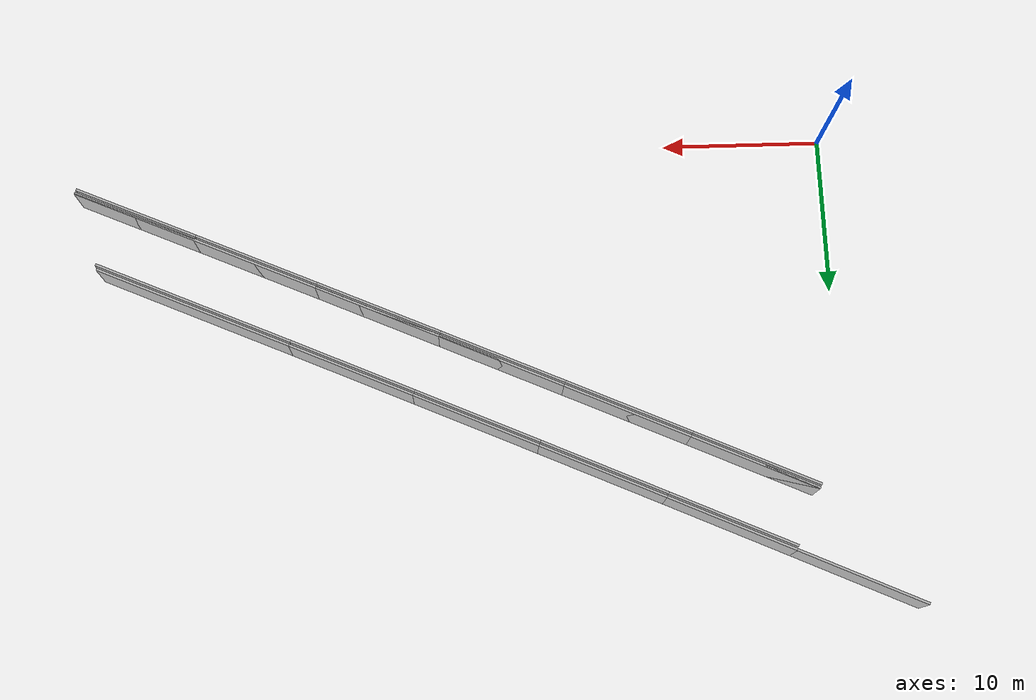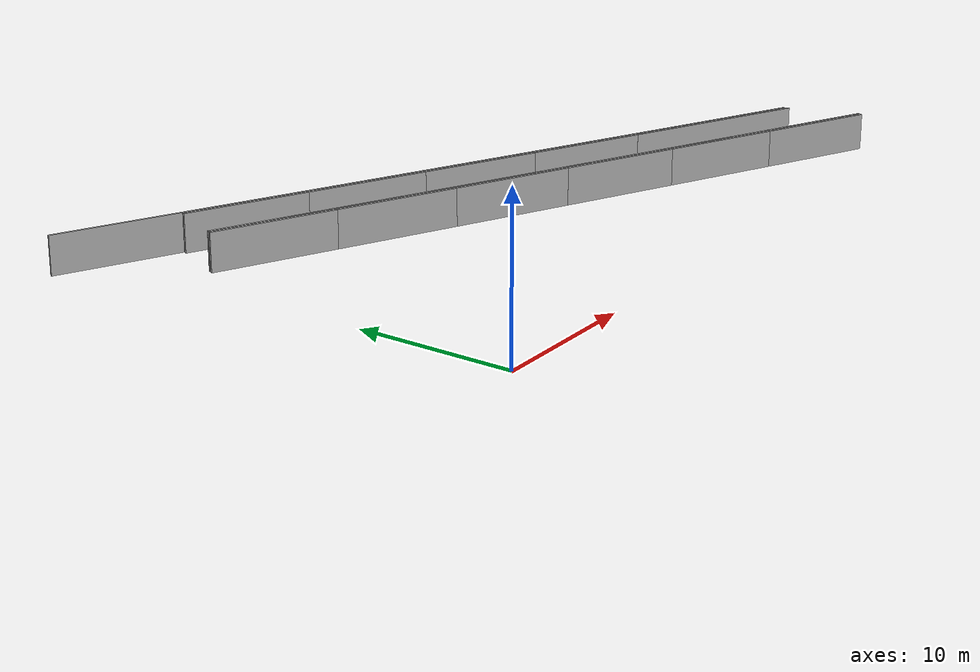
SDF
<?xml version="1.0" ?>
<sdf version="1.6">
  <model name="sps_0410">
    <pose frame="">0 0 0 0 -0 0</pose>
    <static>1</static>
    <self_collide>0</self_collide>
    <allow_auto_disable>0</allow_auto_disable>
    <link name="Wall4312">
      <kinematic>0</kinematic>
      <gravity>1</gravity>
      <self_collide>0</self_collide>
      <collision name="collision">
        <geometry>
          <box>
            <size>8.2515 0.15 2.5</size>
          </box>
        </geometry>
        <pose frame="">0 0 0 0 -0 0</pose>
      </collision>
      <visual name="visual">
        <geometry>
          <box>
            <size>8.2515 0.15 2.5</size>
          </box>
        </geometry>
        <pose frame="">0 0 0 0 -0 0</pose>
        <cast_shadows>1</cast_shadows>
        <transparency>0.0</transparency>
      </visual>
      <pose frame="">7.46117 24.6751 1.25 0 0 -0.420396</pose>
    </link>
    <link name="Wall4313">
      <kinematic>0</kinematic>
      <gravity>1</gravity>
      <self_collide>0</self_collide>
      <collision name="collision">
        <geometry>
          <box>
            <size>8.25149 0.15 2.5</size>
          </box>
        </geometry>
        <pose frame="">0 0 0 0 -0 0</pose>
      </collision>
      <visual name="visual">
        <geometry>
          <box>
            <size>8.25149 0.15 2.5</size>
          </box>
        </geometry>
        <pose frame="">0 0 0 0 -0 0</pose>
        <cast_shadows>1</cast_shadows>
        <transparency>0.0</transparency>
      </visual>
      <pose frame="">14.9982 21.3164 1.25 0 0 -0.418031</pose>
    </link>
    <link name="Wall4314">
      <kinematic>0</kinematic>
      <gravity>1</gravity>
      <self_collide>0</self_collide>
      <collision name="collision">
        <geometry>
          <box>
            <size>8.25167 0.15 2.5</size>
          </box>
        </geometry>
        <pose frame="">0 0 0 0 -0 0</pose>
      </collision>
      <visual name="visual">
        <geometry>
          <box>
            <size>8.25167 0.15 2.5</size>
          </box>
        </geometry>
        <pose frame="">0 0 0 0 -0 0</pose>
        <cast_shadows>1</cast_shadows>
        <transparency>0.0</transparency>
      </visual>
      <pose frame="">22.5431 17.9755 1.25 0 0 -0.415668</pose>
    </link>
    <link name="Wall4315">
      <kinematic>0</kinematic>
      <gravity>1</gravity>
      <self_collide>0</self_collide>
      <collision name="collision">
        <geometry>
          <box>
            <size>8.25154 0.15 2.5</size>
          </box>
        </geometry>
        <pose frame="">0 0 0 0 -0 0</pose>
      </collision>
      <visual name="visual">
        <geometry>
          <box>
            <size>8.25154 0.15 2.5</size>
          </box>
        </geometry>
        <pose frame="">0 0 0 0 -0 0</pose>
        <cast_shadows>1</cast_shadows>
        <transparency>0.0</transparency>
      </visual>
      <pose frame="">30.0961 14.6525 1.25 0 0 -0.413283</pose>
    </link>
    <link name="Wall4316">
      <kinematic>0</kinematic>
      <gravity>1</gravity>
      <self_collide>0</self_collide>
      <collision name="collision">
        <geometry>
          <box>
            <size>13.2303 0.15 2.5</size>
          </box>
        </geometry>
        <pose frame="">0 0 0 0 -0 0</pose>
      </collision>
      <visual name="visual">
        <geometry>
          <box>
            <size>13.2303 0.15 2.5</size>
          </box>
        </geometry>
        <pose frame="">0 0 0 0 -0 0</pose>
        <cast_shadows>1</cast_shadows>
        <transparency>0.0</transparency>
      </visual>
      <pose frame="">39.9425 10.3612 1.25 0 0 -0.40958</pose>
    </link>
    <link name="Wall4325">
      <kinematic>0</kinematic>
      <gravity>1</gravity>
      <self_collide>0</self_collide>
      <collision name="collision">
        <geometry>
          <box>
            <size>8.26109 0.15 2.5</size>
          </box>
        </geometry>
        <pose frame="">0 0 0 0 -0 0</pose>
      </collision>
      <visual name="visual">
        <geometry>
          <box>
            <size>8.26109 0.15 2.5</size>
          </box>
        </geometry>
        <pose frame="">0 0 0 0 -0 0</pose>
        <cast_shadows>1</cast_shadows>
        <transparency>0.0</transparency>
      </visual>
      <pose frame="">43.7029 4.62248 1.25 0 -0 2.73298</pose>
    </link>
    <link name="Wall4326">
      <kinematic>0</kinematic>
      <gravity>1</gravity>
      <self_collide>0</self_collide>
      <collision name="collision">
        <geometry>
          <box>
            <size>8.26093 0.15 2.5</size>
          </box>
        </geometry>
        <pose frame="">0 0 0 0 -0 0</pose>
      </collision>
      <visual name="visual">
        <geometry>
          <box>
            <size>8.26093 0.15 2.5</size>
          </box>
        </geometry>
        <pose frame="">0 0 0 0 -0 0</pose>
        <cast_shadows>1</cast_shadows>
        <transparency>0.0</transparency>
      </visual>
      <pose frame="">36.1258 7.91368 1.25 0 -0 2.73065</pose>
    </link>
    <link name="Wall4327">
      <kinematic>0</kinematic>
      <gravity>1</gravity>
      <self_collide>0</self_collide>
      <collision name="collision">
        <geometry>
          <box>
            <size>8.26082 0.15 2.5</size>
          </box>
        </geometry>
        <pose frame="">0 0 0 0 -0 0</pose>
      </collision>
      <visual name="visual">
        <geometry>
          <box>
            <size>8.26082 0.15 2.5</size>
          </box>
        </geometry>
        <pose frame="">0 0 0 0 -0 0</pose>
        <cast_shadows>1</cast_shadows>
        <transparency>0.0</transparency>
      </visual>
      <pose frame="">28.5567 11.2227 1.25 0 -0 2.72827</pose>
    </link>
    <link name="Wall4328">
      <kinematic>0</kinematic>
      <gravity>1</gravity>
      <self_collide>0</self_collide>
      <collision name="collision">
        <geometry>
          <box>
            <size>8.26114 0.15 2.5</size>
          </box>
        </geometry>
        <pose frame="">0 0 0 0 -0 0</pose>
      </collision>
      <visual name="visual">
        <geometry>
          <box>
            <size>8.26114 0.15 2.5</size>
          </box>
        </geometry>
        <pose frame="">0 0 0 0 -0 0</pose>
        <cast_shadows>1</cast_shadows>
        <transparency>0.0</transparency>
      </visual>
      <pose frame="">20.9953 14.5497 1.25 0 -0 2.72591</pose>
    </link>
    <link name="Wall4329">
      <kinematic>0</kinematic>
      <gravity>1</gravity>
      <self_collide>0</self_collide>
      <collision name="collision">
        <geometry>
          <box>
            <size>8.26105 0.15 2.5</size>
          </box>
        </geometry>
        <pose frame="">0 0 0 0 -0 0</pose>
      </collision>
      <visual name="visual">
        <geometry>
          <box>
            <size>8.26105 0.15 2.5</size>
          </box>
        </geometry>
        <pose frame="">0 0 0 0 -0 0</pose>
        <cast_shadows>1</cast_shadows>
        <transparency>0.0</transparency>
      </visual>
      <pose frame="">13.4416 17.8946 1.25 0 -0 2.72354</pose>
    </link>
    <link name="Wall4330">
      <kinematic>0</kinematic>
      <gravity>1</gravity>
      <self_collide>0</self_collide>
      <collision name="collision">
        <geometry>
          <box>
            <size>8.26084 0.15 2.5</size>
          </box>
        </geometry>
        <pose frame="">0 0 0 0 -0 0</pose>
      </collision>
      <visual name="visual">
        <geometry>
          <box>
            <size>8.26084 0.15 2.5</size>
          </box>
        </geometry>
        <pose frame="">0 0 0 0 -0 0</pose>
        <cast_shadows>1</cast_shadows>
        <transparency>0.0</transparency>
      </visual>
      <pose frame="">5.89605 21.2572 1.25 0 -0 2.7212</pose>
    </link>
    <link name="Wall18058">
      <kinematic>0</kinematic>
      <gravity>1</gravity>
      <self_collide>0</self_collide>
      <collision name="collision">
        <geometry>
          <box>
            <size>8.25101 0.15 2.5</size>
          </box>
        </geometry>
        <pose frame="">0 0 0 0 -0 0</pose>
      </collision>
      <visual name="visual">
        <geometry>
          <box>
            <size>8.25101 0.15 2.5</size>
          </box>
        </geometry>
        <pose frame="">0 0 0 0 -0 0</pose>
        <cast_shadows>1</cast_shadows>
        <transparency>0.0</transparency>
      </visual>
      <pose frame="">0.0367349 28.2787 1.25 0 0 -0.422757</pose>
    </link>
    <link name="Wall18059">
      <kinematic>0</kinematic>
      <gravity>1</gravity>
      <self_collide>0</self_collide>
      <collision name="collision">
        <geometry>
          <box>
            <size>8.25077 0.15 2.5</size>
          </box>
        </geometry>
        <pose frame="">0 0 0 0 -0 0</pose>
      </collision>
      <visual name="visual">
        <geometry>
          <box>
            <size>8.25077 0.15 2.5</size>
          </box>
        </geometry>
        <pose frame="">0 0 0 0 -0 0</pose>
        <cast_shadows>1</cast_shadows>
        <transparency>0.0</transparency>
      </visual>
      <pose frame="">7.56524 24.9025 1.25 0 0 -0.420378</pose>
    </link>
    <link name="Wall18060">
      <kinematic>0</kinematic>
      <gravity>1</gravity>
      <self_collide>0</self_collide>
      <collision name="collision">
        <geometry>
          <box>
            <size>8.25108 0.15 2.5</size>
          </box>
        </geometry>
        <pose frame="">0 0 0 0 -0 0</pose>
      </collision>
      <visual name="visual">
        <geometry>
          <box>
            <size>8.25108 0.15 2.5</size>
          </box>
        </geometry>
        <pose frame="">0 0 0 0 -0 0</pose>
        <cast_shadows>1</cast_shadows>
        <transparency>0.0</transparency>
      </visual>
      <pose frame="">15.1017 21.5441 1.25 0 0 -0.418029</pose>
    </link>
    <link name="Wall18061">
      <kinematic>0</kinematic>
      <gravity>1</gravity>
      <self_collide>0</self_collide>
      <collision name="collision">
        <geometry>
          <box>
            <size>8.25084 0.15 2.5</size>
          </box>
        </geometry>
        <pose frame="">0 0 0 0 -0 0</pose>
      </collision>
      <visual name="visual">
        <geometry>
          <box>
            <size>8.25084 0.15 2.5</size>
          </box>
        </geometry>
        <pose frame="">0 0 0 0 -0 0</pose>
        <cast_shadows>1</cast_shadows>
        <transparency>0.0</transparency>
      </visual>
      <pose frame="">22.6461 18.2034 1.25 0 0 -0.41568</pose>
    </link>
    <link name="Wall18062">
      <kinematic>0</kinematic>
      <gravity>1</gravity>
      <self_collide>0</self_collide>
      <collision name="collision">
        <geometry>
          <box>
            <size>8.25101 0.15 2.5</size>
          </box>
        </geometry>
        <pose frame="">0 0 0 0 -0 0</pose>
      </collision>
      <visual name="visual">
        <geometry>
          <box>
            <size>8.25101 0.15 2.5</size>
          </box>
        </geometry>
        <pose frame="">0 0 0 0 -0 0</pose>
        <cast_shadows>1</cast_shadows>
        <transparency>0.0</transparency>
      </visual>
      <pose frame="">30.1984 14.8805 1.25 0 0 -0.413319</pose>
    </link>
    <link name="Wall18063">
      <kinematic>0</kinematic>
      <gravity>1</gravity>
      <self_collide>0</self_collide>
      <collision name="collision">
        <geometry>
          <box>
            <size>13.0272 0.15 2.5</size>
          </box>
        </geometry>
        <pose frame="">0 0 0 0 -0 0</pose>
      </collision>
      <visual name="visual">
        <geometry>
          <box>
            <size>13.0272 0.15 2.5</size>
          </box>
        </geometry>
        <pose frame="">0 0 0 0 -0 0</pose>
        <cast_shadows>1</cast_shadows>
        <transparency>0.0</transparency>
      </visual>
      <pose frame="">39.9512 10.6293 1.25 0 0 -0.409632</pose>
    </link>
    <link name="Wall37647">
      <kinematic>0</kinematic>
      <gravity>1</gravity>
      <self_collide>0</self_collide>
      <collision name="collision">
        <geometry>
          <box>
            <size>8.2515 0.15 2.5</size>
          </box>
        </geometry>
        <pose frame="">0 0 0 0 -0 0</pose>
      </collision>
      <visual name="visual">
        <geometry>
          <box>
            <size>8.2515 0.15 2.5</size>
          </box>
        </geometry>
        <pose frame="">0 0 0 0 -0 0</pose>
        <cast_shadows>1</cast_shadows>
        <transparency>0.0</transparency>
      </visual>
      <pose frame="">7.46117 24.6751 1.25 0 0 -0.420396</pose>
    </link>
    <link name="Wall37648">
      <kinematic>0</kinematic>
      <gravity>1</gravity>
      <self_collide>0</self_collide>
      <collision name="collision">
        <geometry>
          <box>
            <size>8.25149 0.15 2.5</size>
          </box>
        </geometry>
        <pose frame="">0 0 0 0 -0 0</pose>
      </collision>
      <visual name="visual">
        <geometry>
          <box>
            <size>8.25149 0.15 2.5</size>
          </box>
        </geometry>
        <pose frame="">0 0 0 0 -0 0</pose>
        <cast_shadows>1</cast_shadows>
        <transparency>0.0</transparency>
      </visual>
      <pose frame="">14.9982 21.3164 1.25 0 0 -0.418031</pose>
    </link>
    <link name="Wall37649">
      <kinematic>0</kinematic>
      <gravity>1</gravity>
      <self_collide>0</self_collide>
      <collision name="collision">
        <geometry>
          <box>
            <size>8.25167 0.15 2.5</size>
          </box>
        </geometry>
        <pose frame="">0 0 0 0 -0 0</pose>
      </collision>
      <visual name="visual">
        <geometry>
          <box>
            <size>8.25167 0.15 2.5</size>
          </box>
        </geometry>
        <pose frame="">0 0 0 0 -0 0</pose>
        <cast_shadows>1</cast_shadows>
        <transparency>0.0</transparency>
      </visual>
      <pose frame="">22.5431 17.9755 1.25 0 0 -0.415668</pose>
    </link>
    <link name="Wall37650">
      <kinematic>0</kinematic>
      <gravity>1</gravity>
      <self_collide>0</self_collide>
      <collision name="collision">
        <geometry>
          <box>
            <size>8.25154 0.15 2.5</size>
          </box>
        </geometry>
        <pose frame="">0 0 0 0 -0 0</pose>
      </collision>
      <visual name="visual">
        <geometry>
          <box>
            <size>8.25154 0.15 2.5</size>
          </box>
        </geometry>
        <pose frame="">0 0 0 0 -0 0</pose>
        <cast_shadows>1</cast_shadows>
        <transparency>0.0</transparency>
      </visual>
      <pose frame="">30.0961 14.6525 1.25 0 0 -0.413283</pose>
    </link>
    <link name="Wall37651">
      <kinematic>0</kinematic>
      <gravity>1</gravity>
      <self_collide>0</self_collide>
      <collision name="collision">
        <geometry>
          <box>
            <size>13.2303 0.15 2.5</size>
          </box>
        </geometry>
        <pose frame="">0 0 0 0 -0 0</pose>
      </collision>
      <visual name="visual">
        <geometry>
          <box>
            <size>13.2303 0.15 2.5</size>
          </box>
        </geometry>
        <pose frame="">0 0 0 0 -0 0</pose>
        <cast_shadows>1</cast_shadows>
        <transparency>0.0</transparency>
      </visual>
      <pose frame="">39.9425 10.3612 1.25 0 0 -0.40958</pose>
    </link>
    <link name="Wall37867">
      <kinematic>0</kinematic>
      <gravity>1</gravity>
      <self_collide>0</self_collide>
      <collision name="collision">
        <geometry>
          <box>
            <size>8.26157 0.15 2.5</size>
          </box>
        </geometry>
        <pose frame="">0 0 0 0 -0 0</pose>
      </collision>
      <visual name="visual">
        <geometry>
          <box>
            <size>8.26157 0.15 2.5</size>
          </box>
        </geometry>
        <pose frame="">0 0 0 0 -0 0</pose>
        <cast_shadows>1</cast_shadows>
        <transparency>0.0</transparency>
      </visual>
      <pose frame="">5.79217 21.03 1.25 0 0 -0.420409</pose>
    </link>
    <link name="Wall37868">
      <kinematic>0</kinematic>
      <gravity>1</gravity>
      <self_collide>0</self_collide>
      <collision name="collision">
        <geometry>
          <box>
            <size>8.26146 0.15 2.5</size>
          </box>
        </geometry>
        <pose frame="">0 0 0 0 -0 0</pose>
      </collision>
      <visual name="visual">
        <geometry>
          <box>
            <size>8.26146 0.15 2.5</size>
          </box>
        </geometry>
        <pose frame="">0 0 0 0 -0 0</pose>
        <cast_shadows>1</cast_shadows>
        <transparency>0.0</transparency>
      </visual>
      <pose frame="">13.3382 17.6671 1.25 0 0 -0.418053</pose>
    </link>
    <link name="Wall37869">
      <kinematic>0</kinematic>
      <gravity>1</gravity>
      <self_collide>0</self_collide>
      <collision name="collision">
        <geometry>
          <box>
            <size>8.26155 0.15 2.5</size>
          </box>
        </geometry>
        <pose frame="">0 0 0 0 -0 0</pose>
      </collision>
      <visual name="visual">
        <geometry>
          <box>
            <size>8.26155 0.15 2.5</size>
          </box>
        </geometry>
        <pose frame="">0 0 0 0 -0 0</pose>
        <cast_shadows>1</cast_shadows>
        <transparency>0.0</transparency>
      </visual>
      <pose frame="">20.8922 14.322 1.25 0 0 -0.415689</pose>
    </link>
    <link name="Wall37870">
      <kinematic>0</kinematic>
      <gravity>1</gravity>
      <self_collide>0</self_collide>
      <collision name="collision">
        <geometry>
          <box>
            <size>8.26151 0.15 2.5</size>
          </box>
        </geometry>
        <pose frame="">0 0 0 0 -0 0</pose>
      </collision>
      <visual name="visual">
        <geometry>
          <box>
            <size>8.26151 0.15 2.5</size>
          </box>
        </geometry>
        <pose frame="">0 0 0 0 -0 0</pose>
        <cast_shadows>1</cast_shadows>
        <transparency>0.0</transparency>
      </visual>
      <pose frame="">28.4542 10.9948 1.25 0 0 -0.41331</pose>
    </link>
    <link name="Wall37871">
      <kinematic>0</kinematic>
      <gravity>1</gravity>
      <self_collide>0</self_collide>
      <collision name="collision">
        <geometry>
          <box>
            <size>8.26183 0.15 2.5</size>
          </box>
        </geometry>
        <pose frame="">0 0 0 0 -0 0</pose>
      </collision>
      <visual name="visual">
        <geometry>
          <box>
            <size>8.26183 0.15 2.5</size>
          </box>
        </geometry>
        <pose frame="">0 0 0 0 -0 0</pose>
        <cast_shadows>1</cast_shadows>
        <transparency>0.0</transparency>
      </visual>
      <pose frame="">36.0241 7.6855 1.25 0 0 -0.410947</pose>
    </link>
    <link name="Wall37872">
      <kinematic>0</kinematic>
      <gravity>1</gravity>
      <self_collide>0</self_collide>
      <collision name="collision">
        <geometry>
          <box>
            <size>8.26173 0.15 2.5</size>
          </box>
        </geometry>
        <pose frame="">0 0 0 0 -0 0</pose>
      </collision>
      <visual name="visual">
        <geometry>
          <box>
            <size>8.26173 0.15 2.5</size>
          </box>
        </geometry>
        <pose frame="">0 0 0 0 -0 0</pose>
        <cast_shadows>1</cast_shadows>
        <transparency>0.0</transparency>
      </visual>
      <pose frame="">43.6019 4.394 1.25 0 0 -0.4086</pose>
    </link>
    <link name="Wall37950">
      <kinematic>0</kinematic>
      <gravity>1</gravity>
      <self_collide>0</self_collide>
      <collision name="collision">
        <geometry>
          <box>
            <size>8.26084 0.15 2.5</size>
          </box>
        </geometry>
        <pose frame="">0 0 0 0 -0 0</pose>
      </collision>
      <visual name="visual">
        <geometry>
          <box>
            <size>8.26084 0.15 2.5</size>
          </box>
        </geometry>
        <pose frame="">0 0 0 0 -0 0</pose>
        <cast_shadows>1</cast_shadows>
        <transparency>0.0</transparency>
      </visual>
      <pose frame="">5.89605 21.2572 1.25 0 0 -0.420392</pose>
    </link>
    <link name="Wall37951">
      <kinematic>0</kinematic>
      <gravity>1</gravity>
      <self_collide>0</self_collide>
      <collision name="collision">
        <geometry>
          <box>
            <size>8.26105 0.15 2.5</size>
          </box>
        </geometry>
        <pose frame="">0 0 0 0 -0 0</pose>
      </collision>
      <visual name="visual">
        <geometry>
          <box>
            <size>8.26105 0.15 2.5</size>
          </box>
        </geometry>
        <pose frame="">0 0 0 0 -0 0</pose>
        <cast_shadows>1</cast_shadows>
        <transparency>0.0</transparency>
      </visual>
      <pose frame="">13.4416 17.8946 1.25 0 0 -0.418051</pose>
    </link>
    <link name="Wall37952">
      <kinematic>0</kinematic>
      <gravity>1</gravity>
      <self_collide>0</self_collide>
      <collision name="collision">
        <geometry>
          <box>
            <size>8.26114 0.15 2.5</size>
          </box>
        </geometry>
        <pose frame="">0 0 0 0 -0 0</pose>
      </collision>
      <visual name="visual">
        <geometry>
          <box>
            <size>8.26114 0.15 2.5</size>
          </box>
        </geometry>
        <pose frame="">0 0 0 0 -0 0</pose>
        <cast_shadows>1</cast_shadows>
        <transparency>0.0</transparency>
      </visual>
      <pose frame="">20.9953 14.5497 1.25 0 0 -0.415687</pose>
    </link>
    <link name="Wall37953">
      <kinematic>0</kinematic>
      <gravity>1</gravity>
      <self_collide>0</self_collide>
      <collision name="collision">
        <geometry>
          <box>
            <size>8.26082 0.15 2.5</size>
          </box>
        </geometry>
        <pose frame="">0 0 0 0 -0 0</pose>
      </collision>
      <visual name="visual">
        <geometry>
          <box>
            <size>8.26082 0.15 2.5</size>
          </box>
        </geometry>
        <pose frame="">0 0 0 0 -0 0</pose>
        <cast_shadows>1</cast_shadows>
        <transparency>0.0</transparency>
      </visual>
      <pose frame="">28.5567 11.2227 1.25 0 0 -0.413323</pose>
    </link>
    <link name="Wall37954">
      <kinematic>0</kinematic>
      <gravity>1</gravity>
      <self_collide>0</self_collide>
      <collision name="collision">
        <geometry>
          <box>
            <size>8.26093 0.15 2.5</size>
          </box>
        </geometry>
        <pose frame="">0 0 0 0 -0 0</pose>
      </collision>
      <visual name="visual">
        <geometry>
          <box>
            <size>8.26093 0.15 2.5</size>
          </box>
        </geometry>
        <pose frame="">0 0 0 0 -0 0</pose>
        <cast_shadows>1</cast_shadows>
        <transparency>0.0</transparency>
      </visual>
      <pose frame="">36.1258 7.91368 1.25 0 0 -0.410938</pose>
    </link>
    <link name="Wall37955">
      <kinematic>0</kinematic>
      <gravity>1</gravity>
      <self_collide>0</self_collide>
      <collision name="collision">
        <geometry>
          <box>
            <size>8.26109 0.15 2.5</size>
          </box>
        </geometry>
        <pose frame="">0 0 0 0 -0 0</pose>
      </collision>
      <visual name="visual">
        <geometry>
          <box>
            <size>8.26109 0.15 2.5</size>
          </box>
        </geometry>
        <pose frame="">0 0 0 0 -0 0</pose>
        <cast_shadows>1</cast_shadows>
        <transparency>0.0</transparency>
      </visual>
      <pose frame="">43.7029 4.62248 1.25 0 0 -0.408609</pose>
    </link>
  </model>
</sdf>
